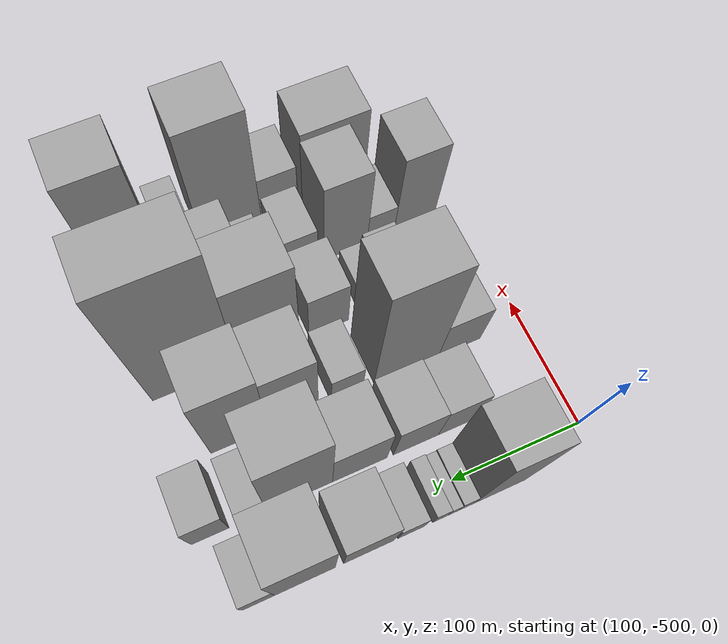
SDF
<sdf version="1.6">
 <world name="default">
  <model name="building_13">
   <static>1</static>
   <pose>100.0000 -426.5870 0 0.000000 0.000000 0.000000</pose>
   <link name="link">
    <pose>0 0 61.50 0 0 0</pose>
    <collision name="collision"><geometry><box><size>40.0000 39.3748 123.0000</size></box></geometry></collision>
    <visual name="visual">
     <cast_shadows>0</cast_shadows>
     <geometry><box><size>40.0000 39.3748 123.0000</size></box></geometry>
     <material>
      <script>
       <uri>model://grey_wall/materials/scripts</uri>
       <uri>model://grey_wall/materials/textures</uri>
       <name>vrc/grey_wall</name>
      </script>
     </material>
    </visual>
   </link>
  </model>
  <model name="building_14">
   <static>1</static>
   <pose>100.0000 -401.0186 0 0.000000 0.000000 0.000000</pose>
   <link name="link">
    <pose>0 0 12.00 0 0 0</pose>
    <collision name="collision"><geometry><box><size>40.0000 11.7619 24.0000</size></box></geometry></collision>
    <visual name="visual">
     <cast_shadows>0</cast_shadows>
     <geometry><box><size>40.0000 11.7619 24.0000</size></box></geometry>
     <material>
      <script>
       <uri>model://grey_wall/materials/scripts</uri>
       <uri>model://grey_wall/materials/textures</uri>
       <name>vrc/grey_wall</name>
      </script>
     </material>
    </visual>
   </link>
  </model>
  <model name="building_15">
   <static>1</static>
   <pose>100.0000 -390.6701 0 0.000000 0.000000 0.000000</pose>
   <link name="link">
    <pose>0 0 10.50 0 0 0</pose>
    <collision name="collision"><geometry><box><size>40.0000 8.9351 21.0000</size></box></geometry></collision>
    <visual name="visual">
     <cast_shadows>0</cast_shadows>
     <geometry><box><size>40.0000 8.9351 21.0000</size></box></geometry>
     <material>
      <script>
       <uri>model://grey_wall/materials/scripts</uri>
       <uri>model://grey_wall/materials/textures</uri>
       <name>vrc/grey_wall</name>
      </script>
     </material>
    </visual>
   </link>
  </model>
  <model name="building_16">
   <static>1</static>
   <pose>100.0000 -380.6885 0 0.000000 0.000000 0.000000</pose>
   <link name="link">
    <pose>0 0 13.50 0 0 0</pose>
    <collision name="collision"><geometry><box><size>40.0000 11.0281 27.0000</size></box></geometry></collision>
    <visual name="visual">
     <cast_shadows>0</cast_shadows>
     <geometry><box><size>40.0000 11.0281 27.0000</size></box></geometry>
     <material>
      <script>
       <uri>model://grey_wall/materials/scripts</uri>
       <uri>model://grey_wall/materials/textures</uri>
       <name>vrc/grey_wall</name>
      </script>
     </material>
    </visual>
   </link>
  </model>
  <model name="building_17">
   <static>1</static>
   <pose>100.0000 -359.2277 0 0.000000 0.000000 0.000000</pose>
   <link name="link">
    <pose>0 0 18.00 0 0 0</pose>
    <collision name="collision"><geometry><box><size>40.0000 19.8936 36.0000</size></box></geometry></collision>
    <visual name="visual">
     <cast_shadows>0</cast_shadows>
     <geometry><box><size>40.0000 19.8936 36.0000</size></box></geometry>
     <material>
      <script>
       <uri>model://grey_wall/materials/scripts</uri>
       <uri>model://grey_wall/materials/textures</uri>
       <name>vrc/grey_wall</name>
      </script>
     </material>
    </visual>
   </link>
  </model>
  <model name="building_18">
   <static>1</static>
   <pose>100.0000 -327.8683 0 0.000000 0.000000 0.000000</pose>
   <link name="link">
    <pose>0 0 36.00 0 0 0</pose>
    <collision name="collision"><geometry><box><size>40.0000 36.8251 72.0000</size></box></geometry></collision>
    <visual name="visual">
     <cast_shadows>0</cast_shadows>
     <geometry><box><size>40.0000 36.8251 72.0000</size></box></geometry>
     <material>
      <script>
       <uri>model://grey_wall/materials/scripts</uri>
       <uri>model://grey_wall/materials/textures</uri>
       <name>vrc/grey_wall</name>
      </script>
     </material>
    </visual>
   </link>
  </model>
  <model name="building_19">
   <static>1</static>
   <pose>100.0000 -281.9354 0 0.000000 0.000000 0.000000</pose>
   <link name="link">
    <pose>0 0 61.50 0 0 0</pose>
    <collision name="collision"><geometry><box><size>40.0000 43.0408 123.0000</size></box></geometry></collision>
    <visual name="visual">
     <cast_shadows>0</cast_shadows>
     <geometry><box><size>40.0000 43.0408 123.0000</size></box></geometry>
     <material>
      <script>
       <uri>model://grey_wall/materials/scripts</uri>
       <uri>model://grey_wall/materials/textures</uri>
       <name>vrc/grey_wall</name>
      </script>
     </material>
    </visual>
   </link>
  </model>
  <model name="building_20">
   <static>1</static>
   <pose>100.0000 -249.3155 0 0.000000 0.000000 0.000000</pose>
   <link name="link">
    <pose>0 0 21.00 0 0 0</pose>
    <collision name="collision"><geometry><box><size>40.0000 22.1990 42.0000</size></box></geometry></collision>
    <visual name="visual">
     <cast_shadows>0</cast_shadows>
     <geometry><box><size>40.0000 22.1990 42.0000</size></box></geometry>
     <material>
      <script>
       <uri>model://grey_wall/materials/scripts</uri>
       <uri>model://grey_wall/materials/textures</uri>
       <name>vrc/grey_wall</name>
      </script>
     </material>
    </visual>
   </link>
  </model>
  <model name="building_65">
   <static>1</static>
   <pose>152.0000 -421.4302 0 0.000000 0.000000 0.000000</pose>
   <link name="link">
    <pose>0 0 28.50 0 0 0</pose>
    <collision name="collision"><geometry><box><size>40.0000 31.5978 57.0000</size></box></geometry></collision>
    <visual name="visual">
     <cast_shadows>0</cast_shadows>
     <geometry><box><size>40.0000 31.5978 57.0000</size></box></geometry>
     <material>
      <script>
       <uri>model://grey_wall/materials/scripts</uri>
       <uri>model://grey_wall/materials/textures</uri>
       <name>vrc/grey_wall</name>
      </script>
     </material>
    </visual>
   </link>
  </model>
  <model name="building_66">
   <static>1</static>
   <pose>152.0000 -388.2753 0 0.000000 0.000000 0.000000</pose>
   <link name="link">
    <pose>0 0 30.00 0 0 0</pose>
    <collision name="collision"><geometry><box><size>40.0000 34.7120 60.0000</size></box></geometry></collision>
    <visual name="visual">
     <cast_shadows>0</cast_shadows>
     <geometry><box><size>40.0000 34.7120 60.0000</size></box></geometry>
     <material>
      <script>
       <uri>model://grey_wall/materials/scripts</uri>
       <uri>model://grey_wall/materials/textures</uri>
       <name>vrc/grey_wall</name>
      </script>
     </material>
    </visual>
   </link>
  </model>
  <model name="building_67">
   <static>1</static>
   <pose>152.0000 -345.3251 0 0.000000 0.000000 0.000000</pose>
   <link name="link">
    <pose>0 0 34.50 0 0 0</pose>
    <collision name="collision"><geometry><box><size>40.0000 41.1885 69.0000</size></box></geometry></collision>
    <visual name="visual">
     <cast_shadows>0</cast_shadows>
     <geometry><box><size>40.0000 41.1885 69.0000</size></box></geometry>
     <material>
      <script>
       <uri>model://grey_wall/materials/scripts</uri>
       <uri>model://grey_wall/materials/textures</uri>
       <name>vrc/grey_wall</name>
      </script>
     </material>
    </visual>
   </link>
  </model>
  <model name="building_68">
   <static>1</static>
   <pose>152.0000 -300.4010 0 0.000000 0.000000 0.000000</pose>
   <link name="link">
    <pose>0 0 61.50 0 0 0</pose>
    <collision name="collision"><geometry><box><size>40.0000 48.6596 123.0000</size></box></geometry></collision>
    <visual name="visual">
     <cast_shadows>0</cast_shadows>
     <geometry><box><size>40.0000 48.6596 123.0000</size></box></geometry>
     <material>
      <script>
       <uri>model://grey_wall/materials/scripts</uri>
       <uri>model://grey_wall/materials/textures</uri>
       <name>vrc/grey_wall</name>
      </script>
     </material>
    </visual>
   </link>
  </model>
  <model name="building_69">
   <static>1</static>
   <pose>152.0000 -265.8453 0 0.000000 0.000000 0.000000</pose>
   <link name="link">
    <pose>0 0 18.00 0 0 0</pose>
    <collision name="collision"><geometry><box><size>40.0000 20.4519 36.0000</size></box></geometry></collision>
    <visual name="visual">
     <cast_shadows>0</cast_shadows>
     <geometry><box><size>40.0000 20.4519 36.0000</size></box></geometry>
     <material>
      <script>
       <uri>model://grey_wall/materials/scripts</uri>
       <uri>model://grey_wall/materials/textures</uri>
       <name>vrc/grey_wall</name>
      </script>
     </material>
    </visual>
   </link>
  </model>
  <model name="building_70">
   <static>1</static>
   <pose>152.0000 -235.1128 0 0.000000 0.000000 0.000000</pose>
   <link name="link">
    <pose>0 0 25.50 0 0 0</pose>
    <collision name="collision"><geometry><box><size>40.0000 27.0131 51.0000</size></box></geometry></collision>
    <visual name="visual">
     <cast_shadows>0</cast_shadows>
     <geometry><box><size>40.0000 27.0131 51.0000</size></box></geometry>
     <material>
      <script>
       <uri>model://grey_wall/materials/scripts</uri>
       <uri>model://grey_wall/materials/textures</uri>
       <name>vrc/grey_wall</name>
      </script>
     </material>
    </visual>
   </link>
  </model>
  <model name="building_118">
   <static>1</static>
   <pose>204.0000 -449.1512 0 0.000000 0.000000 0.000000</pose>
   <link name="link">
    <pose>0 0 28.50 0 0 0</pose>
    <collision name="collision"><geometry><box><size>40.0000 34.0669 57.0000</size></box></geometry></collision>
    <visual name="visual">
     <cast_shadows>0</cast_shadows>
     <geometry><box><size>40.0000 34.0669 57.0000</size></box></geometry>
     <material>
      <script>
       <uri>model://grey_wall/materials/scripts</uri>
       <uri>model://grey_wall/materials/textures</uri>
       <name>vrc/grey_wall</name>
      </script>
     </material>
    </visual>
   </link>
  </model>
  <model name="building_119">
   <static>1</static>
   <pose>204.0000 -406.2856 0 0.000000 0.000000 0.000000</pose>
   <link name="link">
    <pose>0 0 78.00 0 0 0</pose>
    <collision name="collision"><geometry><box><size>40.0000 51.6643 156.0000</size></box></geometry></collision>
    <visual name="visual">
     <cast_shadows>0</cast_shadows>
     <geometry><box><size>40.0000 51.6643 156.0000</size></box></geometry>
     <material>
      <script>
       <uri>model://grey_wall/materials/scripts</uri>
       <uri>model://grey_wall/materials/textures</uri>
       <name>vrc/grey_wall</name>
      </script>
     </material>
    </visual>
   </link>
  </model>
  <model name="building_120">
   <static>1</static>
   <pose>204.0000 -359.1246 0 0.000000 0.000000 0.000000</pose>
   <link name="link">
    <pose>0 0 22.50 0 0 0</pose>
    <collision name="collision"><geometry><box><size>40.0000 24.6578 45.0000</size></box></geometry></collision>
    <visual name="visual">
     <cast_shadows>0</cast_shadows>
     <geometry><box><size>40.0000 24.6578 45.0000</size></box></geometry>
     <material>
      <script>
       <uri>model://grey_wall/materials/scripts</uri>
       <uri>model://grey_wall/materials/textures</uri>
       <name>vrc/grey_wall</name>
      </script>
     </material>
    </visual>
   </link>
  </model>
  <model name="building_121">
   <static>1</static>
   <pose>204.0000 -317.7752 0 0.000000 0.000000 0.000000</pose>
   <link name="link">
    <pose>0 0 52.50 0 0 0</pose>
    <collision name="collision"><geometry><box><size>40.0000 38.0410 105.0000</size></box></geometry></collision>
    <visual name="visual">
     <cast_shadows>0</cast_shadows>
     <geometry><box><size>40.0000 38.0410 105.0000</size></box></geometry>
     <material>
      <script>
       <uri>model://grey_wall/materials/scripts</uri>
       <uri>model://grey_wall/materials/textures</uri>
       <name>vrc/grey_wall</name>
      </script>
     </material>
    </visual>
   </link>
  </model>
  <model name="building_122">
   <static>1</static>
   <pose>204.0000 -277.1395 0 0.000000 0.000000 0.000000</pose>
   <link name="link">
    <pose>0 0 57.00 0 0 0</pose>
    <collision name="collision"><geometry><box><size>40.0000 43.2304 114.0000</size></box></geometry></collision>
    <visual name="visual">
     <cast_shadows>0</cast_shadows>
     <geometry><box><size>40.0000 43.2304 114.0000</size></box></geometry>
     <material>
      <script>
       <uri>model://grey_wall/materials/scripts</uri>
       <uri>model://grey_wall/materials/textures</uri>
       <name>vrc/grey_wall</name>
      </script>
     </material>
    </visual>
   </link>
  </model>
  <model name="building_165">
   <static>1</static>
   <pose>256.0000 -424.0616 0 0.000000 0.000000 0.000000</pose>
   <link name="link">
    <pose>0 0 22.50 0 0 0</pose>
    <collision name="collision"><geometry><box><size>40.0000 25.5638 45.0000</size></box></geometry></collision>
    <visual name="visual">
     <cast_shadows>0</cast_shadows>
     <geometry><box><size>40.0000 25.5638 45.0000</size></box></geometry>
     <material>
      <script>
       <uri>model://grey_wall/materials/scripts</uri>
       <uri>model://grey_wall/materials/textures</uri>
       <name>vrc/grey_wall</name>
      </script>
     </material>
    </visual>
   </link>
  </model>
  <model name="building_166">
   <static>1</static>
   <pose>256.0000 -402.5750 0 0.000000 0.000000 0.000000</pose>
   <link name="link">
    <pose>0 0 16.50 0 0 0</pose>
    <collision name="collision"><geometry><box><size>40.0000 17.4094 33.0000</size></box></geometry></collision>
    <visual name="visual">
     <cast_shadows>0</cast_shadows>
     <geometry><box><size>40.0000 17.4094 33.0000</size></box></geometry>
     <material>
      <script>
       <uri>model://grey_wall/materials/scripts</uri>
       <uri>model://grey_wall/materials/textures</uri>
       <name>vrc/grey_wall</name>
      </script>
     </material>
    </visual>
   </link>
  </model>
  <model name="building_167">
   <static>1</static>
   <pose>256.0000 -368.0214 0 0.000000 0.000000 0.000000</pose>
   <link name="link">
    <pose>0 0 31.50 0 0 0</pose>
    <collision name="collision"><geometry><box><size>40.0000 31.6977 63.0000</size></box></geometry></collision>
    <visual name="visual">
     <cast_shadows>0</cast_shadows>
     <geometry><box><size>40.0000 31.6977 63.0000</size></box></geometry>
     <material>
      <script>
       <uri>model://grey_wall/materials/scripts</uri>
       <uri>model://grey_wall/materials/textures</uri>
       <name>vrc/grey_wall</name>
      </script>
     </material>
    </visual>
   </link>
  </model>
  <model name="building_168">
   <static>1</static>
   <pose>256.0000 -320.9266 0 0.000000 0.000000 0.000000</pose>
   <link name="link">
    <pose>0 0 63.00 0 0 0</pose>
    <collision name="collision"><geometry><box><size>40.0000 48.4920 126.0000</size></box></geometry></collision>
    <visual name="visual">
     <cast_shadows>0</cast_shadows>
     <geometry><box><size>40.0000 48.4920 126.0000</size></box></geometry>
     <material>
      <script>
       <uri>model://grey_wall/materials/scripts</uri>
       <uri>model://grey_wall/materials/textures</uri>
       <name>vrc/grey_wall</name>
      </script>
     </material>
    </visual>
   </link>
  </model>
  <model name="building_169">
   <static>1</static>
   <pose>256.0000 -263.8178 0 0.000000 0.000000 0.000000</pose>
   <link name="link">
    <pose>0 0 91.50 0 0 0</pose>
    <collision name="collision"><geometry><box><size>40.0000 65.7257 183.0000</size></box></geometry></collision>
    <visual name="visual">
     <cast_shadows>0</cast_shadows>
     <geometry><box><size>40.0000 65.7257 183.0000</size></box></geometry>
     <material>
      <script>
       <uri>model://grey_wall/materials/scripts</uri>
       <uri>model://grey_wall/materials/textures</uri>
       <name>vrc/grey_wall</name>
      </script>
     </material>
    </visual>
   </link>
  </model>
  <model name="building_211">
   <static>1</static>
   <pose>308.0000 -463.1676 0 0.000000 0.000000 0.000000</pose>
   <link name="link">
    <pose>0 0 49.50 0 0 0</pose>
    <collision name="collision"><geometry><box><size>40.0000 34.2258 99.0000</size></box></geometry></collision>
    <visual name="visual">
     <cast_shadows>0</cast_shadows>
     <geometry><box><size>40.0000 34.2258 99.0000</size></box></geometry>
     <material>
      <script>
       <uri>model://grey_wall/materials/scripts</uri>
       <uri>model://grey_wall/materials/textures</uri>
       <name>vrc/grey_wall</name>
      </script>
     </material>
    </visual>
   </link>
  </model>
  <model name="building_212">
   <static>1</static>
   <pose>308.0000 -434.6651 0 0.000000 0.000000 0.000000</pose>
   <link name="link">
    <pose>0 0 19.50 0 0 0</pose>
    <collision name="collision"><geometry><box><size>40.0000 22.7791 39.0000</size></box></geometry></collision>
    <visual name="visual">
     <cast_shadows>0</cast_shadows>
     <geometry><box><size>40.0000 22.7791 39.0000</size></box></geometry>
     <material>
      <script>
       <uri>model://grey_wall/materials/scripts</uri>
       <uri>model://grey_wall/materials/textures</uri>
       <name>vrc/grey_wall</name>
      </script>
     </material>
    </visual>
   </link>
  </model>
  <model name="building_213">
   <static>1</static>
   <pose>308.0000 -405.1629 0 0.000000 0.000000 0.000000</pose>
   <link name="link">
    <pose>0 0 51.00 0 0 0</pose>
    <collision name="collision"><geometry><box><size>40.0000 36.2253 102.0000</size></box></geometry></collision>
    <visual name="visual">
     <cast_shadows>0</cast_shadows>
     <geometry><box><size>40.0000 36.2253 102.0000</size></box></geometry>
     <material>
      <script>
       <uri>model://grey_wall/materials/scripts</uri>
       <uri>model://grey_wall/materials/textures</uri>
       <name>vrc/grey_wall</name>
      </script>
     </material>
    </visual>
   </link>
  </model>
  <model name="building_214">
   <static>1</static>
   <pose>308.0000 -368.5347 0 0.000000 0.000000 0.000000</pose>
   <link name="link">
    <pose>0 0 25.50 0 0 0</pose>
    <collision name="collision"><geometry><box><size>40.0000 27.0311 51.0000</size></box></geometry></collision>
    <visual name="visual">
     <cast_shadows>0</cast_shadows>
     <geometry><box><size>40.0000 27.0311 51.0000</size></box></geometry>
     <material>
      <script>
       <uri>model://grey_wall/materials/scripts</uri>
       <uri>model://grey_wall/materials/textures</uri>
       <name>vrc/grey_wall</name>
      </script>
     </material>
    </visual>
   </link>
  </model>
  <model name="building_215">
   <static>1</static>
   <pose>308.0000 -336.4729 0 0.000000 0.000000 0.000000</pose>
   <link name="link">
    <pose>0 0 18.00 0 0 0</pose>
    <collision name="collision"><geometry><box><size>40.0000 21.0926 36.0000</size></box></geometry></collision>
    <visual name="visual">
     <cast_shadows>0</cast_shadows>
     <geometry><box><size>40.0000 21.0926 36.0000</size></box></geometry>
     <material>
      <script>
       <uri>model://grey_wall/materials/scripts</uri>
       <uri>model://grey_wall/materials/textures</uri>
       <name>vrc/grey_wall</name>
      </script>
     </material>
    </visual>
   </link>
  </model>
  <model name="building_216">
   <static>1</static>
   <pose>308.0000 -305.6387 0 0.000000 0.000000 0.000000</pose>
   <link name="link">
    <pose>0 0 36.00 0 0 0</pose>
    <collision name="collision"><geometry><box><size>40.0000 40.5757 72.0000</size></box></geometry></collision>
    <visual name="visual">
     <cast_shadows>0</cast_shadows>
     <geometry><box><size>40.0000 40.5757 72.0000</size></box></geometry>
     <material>
      <script>
       <uri>model://grey_wall/materials/scripts</uri>
       <uri>model://grey_wall/materials/textures</uri>
       <name>vrc/grey_wall</name>
      </script>
     </material>
    </visual>
   </link>
  </model>
  <model name="building_217">
   <static>1</static>
   <pose>308.0000 -272.3273 0 0.000000 0.000000 0.000000</pose>
   <link name="link">
    <pose>0 0 15.00 0 0 0</pose>
    <collision name="collision"><geometry><box><size>40.0000 16.0472 30.0000</size></box></geometry></collision>
    <visual name="visual">
     <cast_shadows>0</cast_shadows>
     <geometry><box><size>40.0000 16.0472 30.0000</size></box></geometry>
     <material>
      <script>
       <uri>model://grey_wall/materials/scripts</uri>
       <uri>model://grey_wall/materials/textures</uri>
       <name>vrc/grey_wall</name>
      </script>
     </material>
    </visual>
   </link>
  </model>
  <model name="building_218">
   <static>1</static>
   <pose>308.0000 -249.5408 0 0.000000 0.000000 0.000000</pose>
   <link name="link">
    <pose>0 0 48.00 0 0 0</pose>
    <collision name="collision"><geometry><box><size>40.0000 29.5258 96.0000</size></box></geometry></collision>
    <visual name="visual">
     <cast_shadows>0</cast_shadows>
     <geometry><box><size>40.0000 29.5258 96.0000</size></box></geometry>
     <material>
      <script>
       <uri>model://grey_wall/materials/scripts</uri>
       <uri>model://grey_wall/materials/textures</uri>
       <name>vrc/grey_wall</name>
      </script>
     </material>
    </visual>
   </link>
  </model>
  <model name="building_261">
   <static>1</static>
   <pose>360.0000 -418.6354 0 0.000000 0.000000 0.000000</pose>
   <link name="link">
    <pose>0 0 45.00 0 0 0</pose>
    <collision name="collision"><geometry><box><size>40.0000 53.5822 90.0000</size></box></geometry></collision>
    <visual name="visual">
     <cast_shadows>0</cast_shadows>
     <geometry><box><size>40.0000 53.5822 90.0000</size></box></geometry>
     <material>
      <script>
       <uri>model://grey_wall/materials/scripts</uri>
       <uri>model://grey_wall/materials/textures</uri>
       <name>vrc/grey_wall</name>
      </script>
     </material>
    </visual>
   </link>
  </model>
  <model name="building_262">
   <static>1</static>
   <pose>360.0000 -372.4085 0 0.000000 0.000000 0.000000</pose>
   <link name="link">
    <pose>0 0 27.00 0 0 0</pose>
    <collision name="collision"><geometry><box><size>40.0000 30.8716 54.0000</size></box></geometry></collision>
    <visual name="visual">
     <cast_shadows>0</cast_shadows>
     <geometry><box><size>40.0000 30.8716 54.0000</size></box></geometry>
     <material>
      <script>
       <uri>model://grey_wall/materials/scripts</uri>
       <uri>model://grey_wall/materials/textures</uri>
       <name>vrc/grey_wall</name>
      </script>
     </material>
    </visual>
   </link>
  </model>
  <model name="building_263">
   <static>1</static>
   <pose>360.0000 -332.4504 0 0.000000 0.000000 0.000000</pose>
   <link name="link">
    <pose>0 0 69.00 0 0 0</pose>
    <collision name="collision"><geometry><box><size>40.0000 49.0445 138.0000</size></box></geometry></collision>
    <visual name="visual">
     <cast_shadows>0</cast_shadows>
     <geometry><box><size>40.0000 49.0445 138.0000</size></box></geometry>
     <material>
      <script>
       <uri>model://grey_wall/materials/scripts</uri>
       <uri>model://grey_wall/materials/textures</uri>
       <name>vrc/grey_wall</name>
      </script>
     </material>
    </visual>
   </link>
  </model>
  <model name="building_264">
   <static>1</static>
   <pose>360.0000 -291.2583 0 0.000000 0.000000 0.000000</pose>
   <link name="link">
    <pose>0 0 19.50 0 0 0</pose>
    <collision name="collision"><geometry><box><size>40.0000 23.3398 39.0000</size></box></geometry></collision>
    <visual name="visual">
     <cast_shadows>0</cast_shadows>
     <geometry><box><size>40.0000 23.3398 39.0000</size></box></geometry>
     <material>
      <script>
       <uri>model://grey_wall/materials/scripts</uri>
       <uri>model://grey_wall/materials/textures</uri>
       <name>vrc/grey_wall</name>
      </script>
     </material>
    </visual>
   </link>
  </model>
  <model name="building_265">
   <static>1</static>
   <pose>360.0000 -251.6954 0 0.000000 0.000000 0.000000</pose>
   <link name="link">
    <pose>0 0 64.50 0 0 0</pose>
    <collision name="collision"><geometry><box><size>40.0000 45.7860 129.0000</size></box></geometry></collision>
    <visual name="visual">
     <cast_shadows>0</cast_shadows>
     <geometry><box><size>40.0000 45.7860 129.0000</size></box></geometry>
     <material>
      <script>
       <uri>model://grey_wall/materials/scripts</uri>
       <uri>model://grey_wall/materials/textures</uri>
       <name>vrc/grey_wall</name>
      </script>
     </material>
    </visual>
   </link>
  </model>
 </world>
</sdf>
